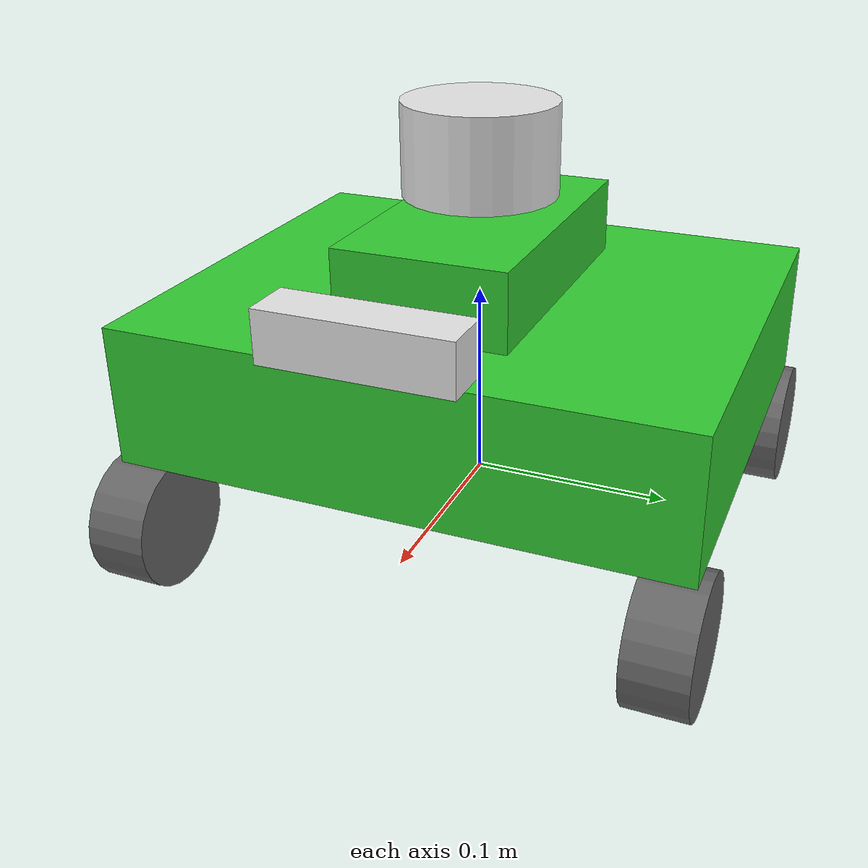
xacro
<?xml version="1.0"?>
<robot xmlns:xacro="http://www.ros.org/wiki/xacro" name="dojo_robot">
  <!-- Math constants -->
  <xacro:property name="M_PI" value="3.1415926535897931" />
  <xacro:property name="M_PI_2" value="1.5707963267948966" />

  <!-- Include common properties and sensors -->
  <xacro:include filename="$(find robot_description)/urdf/common_properties.xacro"/>
  <xacro:include filename="$(find robot_description)/urdf/sensors/rplidar.urdf.xacro"/>

  <!-- Simulation toggle (set by xacro arg) -->
  <xacro:arg name="use_gazebo" default="false"/>

  <!-- Robot parameters -->
  <xacro:property name="base_width" value="0.28"/>
  <xacro:property name="base_length" value="0.23"/>
  <xacro:property name="base_height" value="0.07"/>
  <xacro:property name="wheel_radius" value="0.0325"/>
  <xacro:property name="wheel_width" value="0.03"/>
  <xacro:property name="wheel_separation" value="0.26"/>
  <xacro:property name="wheel_base" value="0.215"/>

  <!-- Camera parameters -->
  <xacro:property name="camera_width" value="0.05" />
  <xacro:property name="camera_height" value="0.03" />
  <xacro:property name="camera_depth" value="0.05" />
  <xacro:property name="camera_x" value="0.1" />  <!-- Position in front of the robot -->
  <xacro:property name="camera_y" value="0.0" />
  <xacro:property name="camera_z" value="0.05" />
  <xacro:property name="camera_fps" value="30" />
  <xacro:property name="camera_hfov" value="1.0472" />  <!-- 60 degrees in radians -->

  <!-- Materials -->
  <material name="dojo_green">
    <color rgba="0.2 0.8 0.2 1"/>
  </material>
  <material name="wheel_grey">
    <color rgba="0.4 0.4 0.4 1"/>
  </material>
  <material name="sensor_white">
    <color rgba="0.9 0.9 0.9 1"/>
  </material>

  <!-- Base footprint (for navigation) -->
  <link name="base_footprint"/>

  <!-- Base link -->
  <link name="base_link">
    <visual>
      <geometry>
        <box size="${base_length} ${base_width} ${base_height}"/>
      </geometry>
      <origin xyz="0 0 ${base_height/2}" rpy="0 0 0"/>
      <material name="dojo_green"/>
    </visual>
    <collision>
      <geometry>
        <box size="${base_length} ${base_width} ${base_height}"/>
      </geometry>
      <origin xyz="0 0 ${base_height/2}" rpy="0 0 0"/>
    </collision>
    <inertial>
      <mass value="2.0"/>
      <origin xyz="0 0 ${base_height/2}" rpy="0 0 0"/>
      <inertia ixx="0.0052" ixy="0.0" ixz="0.0"
               iyy="0.0044" iyz="0.0"
               izz="0.0080"/>
    </inertial>
  </link>

  <!-- Top platform for sensors -->
  <link name="sensor_platform">
    <visual>
      <geometry>
        <box size="0.15 0.085 0.038"/>
      </geometry>
      <origin xyz="0 0 0" rpy="0 0 0"/>
      <material name="dojo_green"/>
    </visual>
    <collision>
      <geometry>
        <box size="0.15 0.085 0.038"/>
      </geometry>
      <origin xyz="0 0 0" rpy="0 0 0"/>
    </collision>
    <inertial>
      <mass value="0.3"/>
      <origin xyz="0 0 0" rpy="0 0 0"/>
      <inertia ixx="0.0002" ixy="0.0" ixz="0.0"
               iyy="0.0006" iyz="0.0"
               izz="0.0007"/>
    </inertial>
  </link>

  <!-- Camera link -->
  <link name="camera_link">
    <visual>
      <geometry>
        <box size="0.025 0.090 0.025"/>
      </geometry>
      <origin xyz="0 0 0" rpy="0 0 0"/>
      <material name="sensor_white"/>
    </visual>
    <collision>
      <geometry>
        <box size="0.025 0.090 0.025"/>
      </geometry>
      <origin xyz="0 0 0" rpy="0 0 0"/>
    </collision>
    <inertial>
      <mass value="0.1"/>
      <origin xyz="0 0 0" rpy="0 0 0"/>
      <inertia ixx="0.00007" ixy="0.0" ixz="0.0"
               iyy="0.00001" iyz="0.0"
               izz="0.00007"/>
    </inertial>
  </link>

  <!-- Wheels macro -->
  <xacro:macro name="wheel" params="prefix reflect">
    <link name="${prefix}_wheel">
      <visual>
        <geometry>
          <cylinder radius="${wheel_radius}" length="${wheel_width}"/>
        </geometry>
        <origin xyz="0 0 0" rpy="${reflect * M_PI_2} 0 0"/>
        <material name="wheel_grey"/>
      </visual>
      <collision>
        <geometry>
          <cylinder radius="${wheel_radius}" length="${wheel_width}"/>
        </geometry>
        <origin xyz="0 0 0" rpy="${reflect * 1.5707963267948966} 0 0"/>
        <surface>
          <friction>
            <ode>
              <mu>0.8</mu>
              <mu2>0.8</mu2>
              <slip1>0.0</slip1>
              <slip2>0.0</slip2>
            </ode>
          </friction>
        </surface>
      </collision>
      <inertial>
        <mass value="0.5"/>
        <inertia ixx="0.0005" ixy="0" ixz="0"
                 iyy="0.001" iyz="0"
                 izz="0.0005"/>
      </inertial>
    </link>
  </xacro:macro>

  <!-- Create all four wheels with Gazebo properties -->
  <xacro:wheel prefix="front_left" reflect="1"/>
  <xacro:wheel prefix="front_right" reflect="-1"/>
  <xacro:wheel prefix="rear_left" reflect="1"/>
  <xacro:wheel prefix="rear_right" reflect="-1"/>

  <!-- Gazebo wheel properties -->
  <gazebo reference="front_left_wheel">
    <material>Gazebo/Grey</material>
    <mu1>0.8</mu1>
    <mu2>0.8</mu2>
    <kp>1000000.0</kp>
    <kd>100.0</kd>
    <fdir1>1 0 0</fdir1>
    <minDepth>0.001</minDepth>
    <maxVel>1.0</maxVel>
    <selfCollide>false</selfCollide>
  </gazebo>

  <gazebo reference="front_right_wheel">
    <material>Gazebo/Grey</material>
    <mu1>0.8</mu1>
    <mu2>0.8</mu2>
    <kp>1000000.0</kp>
    <kd>100.0</kd>
    <fdir1>1 0 0</fdir1>
    <minDepth>0.001</minDepth>
    <maxVel>1.0</maxVel>
    <selfCollide>false</selfCollide>
  </gazebo>

  <gazebo reference="rear_left_wheel">
    <material>Gazebo/Grey</material>
    <mu1>0.8</mu1>
    <mu2>0.8</mu2>
    <kp>1000000.0</kp>
    <kd>100.0</kd>
    <fdir1>1 0 0</fdir1>
    <minDepth>0.001</minDepth>
    <maxVel>1.0</maxVel>
    <selfCollide>false</selfCollide>
  </gazebo>

  <gazebo reference="rear_right_wheel">
    <material>Gazebo/Grey</material>
    <mu1>0.8</mu1>
    <mu2>0.8</mu2>
    <kp>1000000.0</kp>
    <kd>100.0</kd>
    <fdir1>1 0 0</fdir1>
    <minDepth>0.001</minDepth>
    <maxVel>1.0</maxVel>
    <selfCollide>false</selfCollide>
  </gazebo>

  <!-- Joints -->
  <joint name="base_footprint_joint" type="fixed">
    <parent link="base_footprint"/>
    <child link="base_link"/>
    <origin xyz="0 0 ${wheel_radius}" rpy="0 0 0"/>
  </joint>

  <joint name="sensor_platform_joint" type="fixed">
    <parent link="base_link"/>
    <child link="sensor_platform"/>
    <origin xyz="0 0 ${base_height + 0.019}" rpy="0 0 0"/>
  </joint>

  <joint name="laser_joint" type="fixed">
    <parent link="sensor_platform"/>
    <child link="rplidar_link"/>
    <origin xyz="0 0 ${0.038/2 + 0.009}" rpy="0 0 0"/>
  </joint>

  <joint name="camera_joint" type="fixed">
    <parent link="base_link"/>
    <child link="camera_link"/>
    <origin xyz="${base_length/2 + 0.01} 0 ${base_height + 0.02}" rpy="0 0 0"/>
  </joint>

  <!-- Wheel joints -->
  <joint name="front_left_wheel_joint" type="continuous">
    <parent link="base_link"/>
    <child link="front_left_wheel"/>
    <origin xyz="${wheel_base/2} ${wheel_separation/2} -${wheel_radius}" rpy="0 0 0"/>
    <axis xyz="0 1 0"/>
    <limit effort="100" velocity="100"/>
    <dynamics damping="0.1" friction="0.5"/>
  </joint>

  <joint name="front_right_wheel_joint" type="continuous">
    <parent link="base_link"/>
    <child link="front_right_wheel"/>
    <origin xyz="${wheel_base/2} ${-wheel_separation/2} -${wheel_radius}" rpy="0 0 0"/>
    <axis xyz="0 1 0"/>
    <limit effort="100" velocity="100"/>
    <dynamics damping="0.1" friction="0.5"/>
  </joint>

  <joint name="rear_left_wheel_joint" type="continuous">
    <parent link="base_link"/>
    <child link="rear_left_wheel"/>
    <origin xyz="-${wheel_base/2} ${wheel_separation/2} -${wheel_radius}" rpy="0 0 0"/>
    <axis xyz="0 1 0"/>
    <limit effort="100" velocity="100"/>
    <dynamics damping="0.1" friction="0.5"/>
  </joint>

  <joint name="rear_right_wheel_joint" type="continuous">
    <parent link="base_link"/>
    <child link="rear_right_wheel"/>
    <origin xyz="-${wheel_base/2} ${-wheel_separation/2} -${wheel_radius}" rpy="0 0 0"/>
    <axis xyz="0 1 0"/>
    <limit effort="100" velocity="100"/>
    <dynamics damping="0.1" friction="0.5"/>
  </joint>

  <!-- ROS2 Control Hardware Interface -->
  <ros2_control name="dojo_robot_system" type="system">
    <hardware>
      <plugin>gazebo_ros2_control/GazeboSystem</plugin>
      <param name="update_rate">100</param>
      <param name="robot_param">robot_description</param>
      <param name="robot_param_type">robot_description</param>
      <param name="use_sim_time">true</param>
    </hardware>

    <!-- Front left wheel -->
    <joint name="front_left_wheel_joint">
      <command_interface name="velocity">
        <param name="min">-10</param>
        <param name="max">10</param>
      </command_interface>
      <state_interface name="position"/>
      <state_interface name="velocity"/>
      <state_interface name="effort"/>
      <param name="initial_position">0.0</param>
    </joint>

    <!-- Front right wheel -->
    <joint name="front_right_wheel_joint">
      <command_interface name="velocity">
        <param name="min">-10</param>
        <param name="max">10</param>
      </command_interface>
      <state_interface name="position"/>
      <state_interface name="velocity"/>
      <state_interface name="effort"/>
      <param name="initial_position">0.0</param>
    </joint>

    <!-- Rear left wheel -->
    <joint name="rear_left_wheel_joint">
      <command_interface name="velocity">
        <param name="min">-10</param>
        <param name="max">10</param>
      </command_interface>
      <state_interface name="position"/>
      <state_interface name="velocity"/>
    </joint>

    <!-- Rear right wheel -->
    <joint name="rear_right_wheel_joint">
      <command_interface name="velocity">
        <param name="min">-10</param>
        <param name="max">10</param>
      </command_interface>
      <state_interface name="position"/>
      <state_interface name="velocity"/>
    </joint>
  </ros2_control>

  <!-- Gazebo properties -->
  <gazebo>
    <plugin name="gazebo_ros_control" filename="libgazebo_ros_control.so">
      <robotNamespace>/</robotNamespace>
      <robotSimType>gazebo_ros_control/DefaultRobotHWSim</robotSimType>
    </plugin>
  </gazebo>

  <!-- Base link Gazebo properties -->
  <gazebo reference="base_link">
    <material>Gazebo/Green</material>
  </gazebo>

  <gazebo reference="sensor_platform">
    <material>Gazebo/Green</material>
  </gazebo>

  <gazebo reference="laser">
    <material>Gazebo/White</material>
  </gazebo>

  <gazebo reference="camera_link">
    <material>Gazebo/White</material>
  </gazebo>

  <gazebo reference="front_left_wheel">
    <material>Gazebo/Grey</material>
    <mu1>0.8</mu1>
    <mu2>0.8</mu2>
    <kp>1000000.0</kp>
    <kd>100.0</kd>
  </gazebo>

  <gazebo reference="front_right_wheel">
    <material>Gazebo/Grey</material>
    <mu1>0.8</mu1>
    <mu2>0.8</mu2>
    <kp>1000000.0</kp>
    <kd>100.0</kd>
  </gazebo>

  <gazebo reference="rear_left_wheel">
    <material>Gazebo/Grey</material>
    <mu1>0.8</mu1>
    <mu2>0.8</mu2>
    <kp>1000000.0</kp>
    <kd>100.0</kd>
  </gazebo>

  <gazebo reference="rear_right_wheel">
    <material>Gazebo/Grey</material>
    <mu1>0.8</mu1>
    <mu2>0.8</mu2>
    <kp>1000000.0</kp>
    <kd>100.0</kd>
  </gazebo>

  <!-- RPLIDAR Gazebo plugin -->
  <gazebo reference="rplidar_link">
    <sensor type="ray" name="rplidar">
      <pose>0 0 0 0 0 0</pose>
      <visualize>true</visualize>
      <update_rate>10</update_rate>
      <ray>
        <scan>
          <horizontal>
            <samples>360</samples>
            <resolution>1.0</resolution>
            <min_angle>0.0</min_angle>
            <max_angle>6.28319</max_angle>
          </horizontal>
        </scan>
        <range>
          <min>0.15</min>
          <max>12.0</max>
          <resolution>0.01</resolution>
        </range>
        <noise>
          <type>gaussian</type>
          <mean>0.0</mean>
          <stddev>0.01</stddev>
        </noise>
      </ray>
      <plugin name="gazebo_ros_rplidar_controller" filename="libgazebo_ros_ray_sensor.so">
        <ros>
          <namespace>/</namespace>
          <remapping>~/out:=scan</remapping>
        </ros>
        <output_type>sensor_msgs/msg/LaserScan</output_type>
        <frame_name>rplidar_link</frame_name>
      </plugin>
    </sensor>
  </gazebo>

</robot>

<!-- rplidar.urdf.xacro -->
<robot xmlns:xacro="http://www.ros.org/wiki/xacro">
  <!-- RPLIDAR A1M8 Parameters -->
  <xacro:property name="lidar_radius" value="0.038" />  <!-- Approximate radius of the LiDAR -->
  <xacro:property name="lidar_height" value="0.045" />   <!-- Approximate height of the LiDAR -->

  <!-- RPLIDAR A1M8 Link -->
  <link name="rplidar_link">
    <visual>
      <origin xyz="0 0 ${lidar_height/2}" rpy="0 0 0"/>
      <geometry>
        <cylinder radius="${lidar_radius}" length="${lidar_height}"/>
      </geometry>
      <material name="sensor_white"/>
    </visual>

    <collision>
      <origin xyz="0 0 ${lidar_height/2}" rpy="0 0 0"/>
      <geometry>
        <cylinder radius="${lidar_radius}" length="${lidar_height}"/>
      </geometry>
    </collision>
  </link>

  <!-- The joint is already defined in dojo_robot.urdf.xacro -->
</robot>
